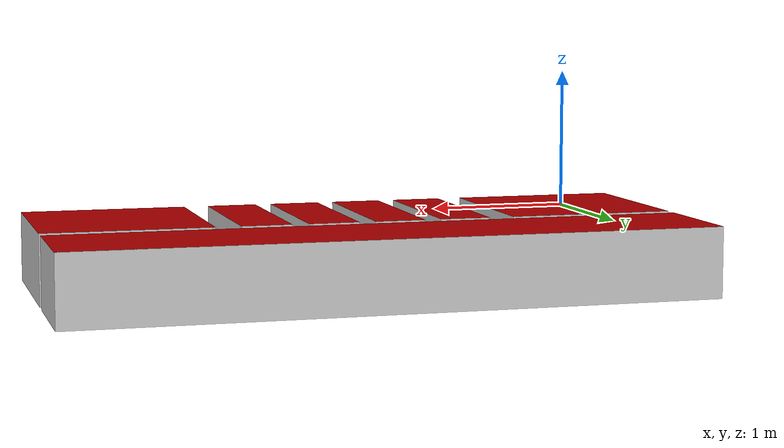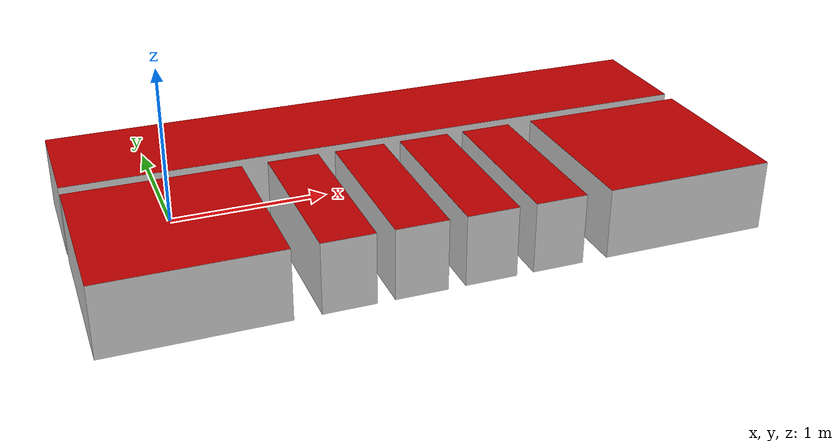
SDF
<?xml version='1.0' encoding='UTF-8'?>
<sdf version="1.7"><model name="terrain"><pose>0 0 0 0 0 0</pose><model name="terrain_indicator"><model name="initial"><static>true</static><pose>0 0 0 0 0 0</pose><link name="plate_link"><pose>0 0 0 0 0 0</pose><visual name="plate_visual"><geometry><box><size>1.2 1.2 0.001 0 0 0</size></box></geometry><material><ambient>0.8 0 0 1</ambient><diffuse>0.8 0 0 1</diffuse><specular>0.1 0.1 0.1 1</specular><emissive>0.8 0 0 1</emissive></material></visual></link></model><model name="bridge_0"><static>true</static><pose>0.96 0.0 0 0 0 0</pose><link name="plate_link"><pose>0 0 0 0 0 0</pose><visual name="plate_visual"><geometry><box><size>0.36 1.2 0.001 0 0 0</size></box></geometry><material><ambient>0.8 0 0 1</ambient><diffuse>0.8 0 0 1</diffuse><specular>0.1 0.1 0.1 1</specular><emissive>0.8 0 0 1</emissive></material></visual></link></model><model name="bridge_1"><static>true</static><pose>1.44 0.0 0 0 0 0</pose><link name="plate_link"><pose>0 0 0 0 0 0</pose><visual name="plate_visual"><geometry><box><size>0.36 1.2 0.001 0 0 0</size></box></geometry><material><ambient>0.8 0 0 1</ambient><diffuse>0.8 0 0 1</diffuse><specular>0.1 0.1 0.1 1</specular><emissive>0.8 0 0 1</emissive></material></visual></link></model><model name="bridge_2"><static>true</static><pose>1.92 0.0 0 0 0 0</pose><link name="plate_link"><pose>0 0 0 0 0 0</pose><visual name="plate_visual"><geometry><box><size>0.36 1.2 0.001 0 0 0</size></box></geometry><material><ambient>0.8 0 0 1</ambient><diffuse>0.8 0 0 1</diffuse><specular>0.1 0.1 0.1 1</specular><emissive>0.8 0 0 1</emissive></material></visual></link></model><model name="bridge_3"><static>true</static><pose>2.4 0.0 0 0 0 0</pose><link name="plate_link"><pose>0 0 0 0 0 0</pose><visual name="plate_visual"><geometry><box><size>0.36 1.2 0.001 0 0 0</size></box></geometry><material><ambient>0.8 0 0 1</ambient><diffuse>0.8 0 0 1</diffuse><specular>0.1 0.1 0.1 1</specular><emissive>0.8 0 0 1</emissive></material></visual></link></model><model name="goal"><static>true</static><pose>3.3600000000000003 0.0 0 0 0 0</pose><link name="plate_link"><pose>0 0 0 0 0 0</pose><visual name="plate_visual"><geometry><box><size>1.2 1.2 0.001 0 0 0</size></box></geometry><material><ambient>0.8 0 0 1</ambient><diffuse>0.8 0 0 1</diffuse><specular>0.1 0.1 0.1 1</specular><emissive>0.8 0 0 1</emissive></material></visual></link></model><model name="lateral"><static>true</static><pose>1.6800000000000002 1.1 0 0 0 0</pose><link name="plate_link"><pose>0 0 0 0 0 0</pose><visual name="plate_visual"><geometry><box><size>4.5600000000000005 0.8 0.001 0 0 0</size></box></geometry><material><ambient>0.8 0 0 1</ambient><diffuse>0.8 0 0 1</diffuse><specular>0.1 0.1 0.1 1</specular><emissive>0.8 0 0 1</emissive></material></visual></link></model></model><pose>0 0 0 0 0 0</pose><model name="terrain_height"><model name="initial"><static>true</static><pose>0 0 -0.25 0 0 0</pose><link name="plate_link"><pose>0 0 0 0 0 0</pose><visual name="plate_visual"><geometry><box><size>1.2 1.2 0.5 0 0 0</size></box></geometry></visual><collision name="plate_collision"><geometry><box><size>1.2 1.2 0.5 0 0 0</size></box></geometry></collision></link></model><model name="bridge_0"><static>true</static><pose>0.96 0.0 -0.25 0 0 0</pose><link name="plate_link"><pose>0 0 0 0 0 0</pose><visual name="plate_visual"><geometry><box><size>0.36 1.2 0.5 0 0 0</size></box></geometry></visual><collision name="plate_collision"><geometry><box><size>0.36 1.2 0.5 0 0 0</size></box></geometry></collision></link></model><model name="bridge_1"><static>true</static><pose>1.44 0.0 -0.25 0 0 0</pose><link name="plate_link"><pose>0 0 0 0 0 0</pose><visual name="plate_visual"><geometry><box><size>0.36 1.2 0.5 0 0 0</size></box></geometry></visual><collision name="plate_collision"><geometry><box><size>0.36 1.2 0.5 0 0 0</size></box></geometry></collision></link></model><model name="bridge_2"><static>true</static><pose>1.92 0.0 -0.25 0 0 0</pose><link name="plate_link"><pose>0 0 0 0 0 0</pose><visual name="plate_visual"><geometry><box><size>0.36 1.2 0.5 0 0 0</size></box></geometry></visual><collision name="plate_collision"><geometry><box><size>0.36 1.2 0.5 0 0 0</size></box></geometry></collision></link></model><model name="bridge_3"><static>true</static><pose>2.4 0.0 -0.25 0 0 0</pose><link name="plate_link"><pose>0 0 0 0 0 0</pose><visual name="plate_visual"><geometry><box><size>0.36 1.2 0.5 0 0 0</size></box></geometry></visual><collision name="plate_collision"><geometry><box><size>0.36 1.2 0.5 0 0 0</size></box></geometry></collision></link></model><model name="goal"><static>true</static><pose>3.3600000000000003 0.0 -0.25 0 0 0</pose><link name="plate_link"><pose>0 0 0 0 0 0</pose><visual name="plate_visual"><geometry><box><size>1.2 1.2 0.5 0 0 0</size></box></geometry></visual><collision name="plate_collision"><geometry><box><size>1.2 1.2 0.5 0 0 0</size></box></geometry></collision></link></model><model name="lateral"><static>true</static><pose>1.6800000000000002 1.1 -0.25 0 0 0</pose><link name="plate_link"><pose>0 0 0 0 0 0</pose><visual name="plate_visual"><geometry><box><size>4.5600000000000005 0.8 0.5 0 0 0</size></box></geometry></visual><collision name="plate_collision"><geometry><box><size>4.5600000000000005 0.8 0.5 0 0 0</size></box></geometry></collision></link></model></model><pose>0 0 0 0 0 0</pose></model></sdf>
